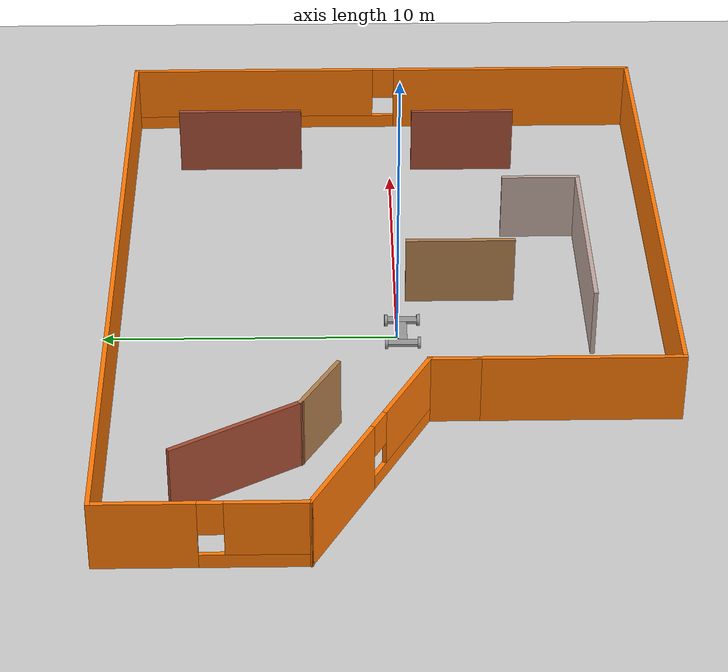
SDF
<sdf version="1.6">
 <world name="default">
  <plugin name="hello" filename="libhello.so"/>
  <light name="sun" type="directional">
   <pose>0 0 10 0 -0 0</pose>
   <diffuse>0.8 0.8 0.8 1</diffuse>
   <specular>0.2 0.2 0.2 1</specular>
   <attenuation>
    <range>1000</range>
    <constant>0.9</constant>
    <linear>0.01</linear>
    <quadratic>0.001</quadratic>
   </attenuation>
   <direction>-0.5 0.1 -0.9</direction>
  </light>
  <model name="ground_plane">
   <static>1</static>
   <link name="link">
    <collision name="collision">
     <geometry><plane><normal>0 0 1</normal><size>100 100</size></plane></geometry>
     <surface>
      <contact><collide_bitmask>65535</collide_bitmask></contact>
      <friction><ode><mu>100</mu><mu2>50</mu2></ode></friction>
     </surface>
    </collision>
    <visual name="visual">
     <cast_shadows>0</cast_shadows>
     <geometry><plane><normal>0 0 1</normal><size>100 100</size></plane></geometry>
     <material>
      <script><uri>file://media/materials/scripts/gazebo.material</uri><name>Gazebo/Grey</name></script>
     </material>
    </visual>
   </link>
  </model>
  <gravity>0 0 -9.8</gravity>
  <magnetic_field>6e-06 2.3e-05 -4.2e-05</magnetic_field>
  <atmosphere type="adiabatic"/>
  <physics name="default_physics" default="0" type="ode">
   <max_step_size>0.001</max_step_size>
   <real_time_factor>1</real_time_factor>
   <real_time_update_rate>1000</real_time_update_rate>
  </physics>
  <scene><ambient>0.4 0.4 0.4 1</ambient><background>0.7 0.7 0.7 1</background><shadows>1</shadows></scene>
  <audio><device>default</device></audio>
  <spherical_coordinates>
   <surface_model>EARTH_WGS84</surface_model>
   <latitude_deg>0</latitude_deg>
   <longitude_deg>0</longitude_deg>
   <elevation>0</elevation>
   <heading_deg>0</heading_deg>
  </spherical_coordinates>
  <model name="building_room_No1">
   <pose>1.13605 0.221425 0 0 -0 0</pose>
   <link name="Wall_0">
    <collision name="Wall_0_Collision">
     <geometry><box><size>1.75 0.15 2.5</size></box></geometry>
     <pose>0 0 1.25 0 -0 0</pose>
    </collision>
    <visual name="Wall_0_Visual">
     <pose>0 0 1.25 0 -0 0</pose>
     <geometry><box><size>1.75 0.15 2.5</size></box></geometry>
     <material>
      <script><uri>file://media/materials/scripts/gazebo.material</uri><name>Gazebo/Grey</name></script>
      <ambient>0.996078 0.47451 0.0196078 1</ambient>
     </material>
     <meta><layer>0</layer></meta>
    </visual>
    <pose>-5.66165 -1.9 0 0 -0 -1.5708</pose>
   </link>
   <link name="Wall_1">
    <collision name="Wall_1_Collision">
     <geometry><box><size>6.75 0.15 2.5</size></box></geometry>
     <pose>0 0 1.25 0 -0 0</pose>
    </collision>
    <visual name="Wall_1_Visual">
     <pose>0 0 1.25 0 -0 0</pose>
     <geometry><box><size>6.75 0.15 2.5</size></box></geometry>
     <material>
      <script><uri>file://media/materials/scripts/gazebo.material</uri><name>Gazebo/Grey</name></script>
      <ambient>0.996078 0.47451 0.0196078 1</ambient>
     </material>
     <meta><layer>0</layer></meta>
    </visual>
    <pose>-5.66165 -6 0 0 -0 -1.5708</pose>
   </link>
   <link name="Wall_11">
    <collision name="Wall_11_Collision">
     <geometry><box><size>7.25 0.15 2.5</size></box></geometry>
     <pose>0 0 1.25 0 -0 0</pose>
    </collision>
    <visual name="Wall_11_Visual">
     <pose>0 0 1.25 0 -0 0</pose>
     <geometry><box><size>7.25 0.15 2.5</size></box></geometry>
     <material>
      <script><uri>file://media/materials/scripts/gazebo.material</uri><name>Gazebo/Grey</name></script>
      <ambient>0.760784 0.662745 0.627451 1</ambient>
     </material>
     <meta><layer>0</layer></meta>
    </visual>
    <pose>1.48564 -6.76482 0 0 -0 0</pose>
   </link>
   <link name="Wall_12">
    <collision name="Wall_12_Collision">
     <geometry><box><size>2.75 0.15 2.5</size></box></geometry>
     <pose>0 0 1.25 0 -0 0</pose>
    </collision>
    <visual name="Wall_12_Visual">
     <pose>0 0 1.25 0 -0 0</pose>
     <geometry><box><size>2.75 0.15 2.5</size></box></geometry>
     <material>
      <script><uri>file://media/materials/scripts/gazebo.material</uri><name>Gazebo/Grey</name></script>
      <ambient>0.760784 0.662745 0.627451 1</ambient>
     </material>
     <meta><layer>0</layer></meta>
    </visual>
    <pose>5.03564 -5.46482 0 0 -0 1.5708</pose>
   </link>
   <link name="Wall_14">
    <collision name="Wall_14_Collision">
     <geometry><box><size>3.75 0.15 2.5</size></box></geometry>
     <pose>0 0 1.25 0 -0 0</pose>
    </collision>
    <visual name="Wall_14_Visual">
     <pose>0 0 1.25 0 -0 0</pose>
     <geometry><box><size>3.75 0.15 2.5</size></box></geometry>
     <material>
      <script><uri>file://media/materials/scripts/gazebo.material</uri><name>Gazebo/Wood</name></script>
      <ambient>1 1 1 1</ambient>
     </material>
     <meta><layer>0</layer></meta>
    </visual>
    <pose>1.06655 -2.43195 0 0 -0 1.5708</pose>
   </link>
   <link name="Wall_16">
    <collision name="Wall_16_Collision">
     <geometry><box><size>4.5 0.15 2.5</size></box></geometry>
     <pose>0 0 1.25 0 -0 0</pose>
    </collision>
    <visual name="Wall_16_Visual">
     <pose>0 0 1.25 0 -0 0</pose>
     <geometry><box><size>4.5 0.15 2.5</size></box></geometry>
     <material>
      <script><uri>file://media/materials/scripts/gazebo.material</uri><name>Gazebo/Bricks</name></script>
      <ambient>1 1 1 1</ambient>
     </material>
     <meta><layer>0</layer></meta>
    </visual>
    <pose>9.68534 5.30758 0 0 -0 -1.5708</pose>
   </link>
   <link name="Wall_18">
    <collision name="Wall_18_Collision">
     <geometry><box><size>3.75 0.15 2.5</size></box></geometry>
     <pose>0 0 1.25 0 -0 0</pose>
    </collision>
    <visual name="Wall_18_Visual">
     <pose>0 0 1.25 0 -0 0</pose>
     <geometry><box><size>3.75 0.15 2.5</size></box></geometry>
     <material>
      <script><uri>file://media/materials/scripts/gazebo.material</uri><name>Gazebo/Bricks</name></script>
      <ambient>1 1 1 1</ambient>
     </material>
     <meta><layer>0</layer></meta>
    </visual>
    <pose>9.57981 -2.90104 0 0 -0 -1.5708</pose>
   </link>
   <link name="Wall_2">
    <collision name="Wall_2_Collision">
     <geometry><box><size>18.5 0.15 2.5</size></box></geometry>
     <pose>0 0 1.25 0 -0 0</pose>
    </collision>
    <visual name="Wall_2_Visual">
     <pose>0 0 1.25 0 -0 0</pose>
     <geometry><box><size>18.5 0.15 2.5</size></box></geometry>
     <material>
      <script><uri>file://media/materials/scripts/gazebo.material</uri><name>Gazebo/Grey</name></script>
      <ambient>0.996078 0.47451 0.0196078 1</ambient>
     </material>
     <meta><layer>0</layer></meta>
    </visual>
    <pose>3.51335 -9.3 0 0 -0 0</pose>
   </link>
   <link name="Wall_3">
    <pose>12.6883 -0 0 0 -0 1.5708</pose>
    <visual name="Wall_3_Visual_0">
     <pose>-4.91034 0 1.25 0 -0 0</pose>
     <geometry><box><size>8.92932 0.15 2.5</size></box></geometry>
     <material>
      <script><uri>file://media/materials/scripts/gazebo.material</uri><name>Gazebo/Grey</name></script>
      <ambient>0.996078 0.47451 0.0196078 1</ambient>
     </material>
     <meta><layer>0</layer></meta>
    </visual>
    <collision name="Wall_3_Collision_0">
     <geometry><box><size>8.92932 0.15 2.5</size></box></geometry>
     <pose>-4.91034 0 1.25 0 -0 0</pose>
    </collision>
    <visual name="Wall_3_Visual_1">
     <pose>4.46466 0 0.25 0 -0 0</pose>
     <geometry><box><size>9.82068 0.15 0.5</size></box></geometry>
     <material>
      <script><uri>file://media/materials/scripts/gazebo.material</uri><name>Gazebo/Grey</name></script>
      <ambient>0.996078 0.47451 0.0196078 1</ambient>
     </material>
     <meta><layer>0</layer></meta>
    </visual>
    <collision name="Wall_3_Collision_1">
     <geometry><box><size>9.82068 0.15 0.5</size></box></geometry>
     <pose>4.46466 0 0.25 0 -0 0</pose>
    </collision>
    <visual name="Wall_3_Visual_2">
     <pose>4.86466 0 1.5 0 -0 0</pose>
     <geometry><box><size>9.02068 0.15 2</size></box></geometry>
     <material>
      <script><uri>file://media/materials/scripts/gazebo.material</uri><name>Gazebo/Grey</name></script>
      <ambient>0.996078 0.47451 0.0196078 1</ambient>
     </material>
     <meta><layer>0</layer></meta>
    </visual>
    <collision name="Wall_3_Collision_2">
     <geometry><box><size>9.02068 0.15 2</size></box></geometry>
     <pose>4.86466 0 1.5 0 -0 0</pose>
    </collision>
    <visual name="Wall_3_Visual_3">
     <pose>-0.04568 0 1.9 0 -0 0</pose>
     <geometry><box><size>0.8 0.15 1.2</size></box></geometry>
     <material>
      <script><uri>file://media/materials/scripts/gazebo.material</uri><name>Gazebo/Grey</name></script>
      <ambient>0.996078 0.47451 0.0196078 1</ambient>
     </material>
     <meta><layer>0</layer></meta>
    </visual>
    <collision name="Wall_3_Collision_3">
     <geometry><box><size>0.8 0.15 1.2</size></box></geometry>
     <pose>-0.04568 0 1.9 0 -0 0</pose>
    </collision>
   </link>
   <link name="Wall_4">
    <collision name="Wall_4_Collision">
     <geometry><box><size>25.5 0.15 2.5</size></box></geometry>
     <pose>0 0 1.25 0 -0 0</pose>
    </collision>
    <visual name="Wall_4_Visual">
     <pose>0 0 1.25 0 -0 0</pose>
     <geometry><box><size>25.5 0.15 2.5</size></box></geometry>
     <material>
      <script><uri>file://media/materials/scripts/gazebo.material</uri><name>Gazebo/Grey</name></script>
      <ambient>0.996078 0.47451 0.0196078 1</ambient>
     </material>
     <meta><layer>0</layer></meta>
    </visual>
    <pose>0.013348 9.3 0 0 -0 3.14159</pose>
   </link>
   <link name="Wall_5">
    <pose>-12.6617 6 0 0 -0 -1.5708</pose>
    <visual name="Wall_5_Visual_0">
     <pose>-1.72833 0 1.25 0 -0 0</pose>
     <geometry><box><size>3.29334 0.15 2.5</size></box></geometry>
     <material>
      <script><uri>file://media/materials/scripts/gazebo.material</uri><name>Gazebo/Grey</name></script>
      <ambient>0.996078 0.47451 0.0196078 1</ambient>
     </material>
     <meta><layer>0</layer></meta>
    </visual>
    <collision name="Wall_5_Collision_0">
     <geometry><box><size>3.29334 0.15 2.5</size></box></geometry>
     <pose>-1.72833 0 1.25 0 -0 0</pose>
    </collision>
    <visual name="Wall_5_Visual_1">
     <pose>1.64667 0 0.25 0 -0 0</pose>
     <geometry><box><size>3.45666 0.15 0.5</size></box></geometry>
     <material>
      <script><uri>file://media/materials/scripts/gazebo.material</uri><name>Gazebo/Grey</name></script>
      <ambient>0.996078 0.47451 0.0196078 1</ambient>
     </material>
     <meta><layer>0</layer></meta>
    </visual>
    <collision name="Wall_5_Collision_1">
     <geometry><box><size>3.45666 0.15 0.5</size></box></geometry>
     <pose>1.64667 0 0.25 0 -0 0</pose>
    </collision>
    <visual name="Wall_5_Visual_2">
     <pose>2.04667 0 1.5 0 -0 0</pose>
     <geometry><box><size>2.65666 0.15 2</size></box></geometry>
     <material>
      <script><uri>file://media/materials/scripts/gazebo.material</uri><name>Gazebo/Grey</name></script>
      <ambient>0.996078 0.47451 0.0196078 1</ambient>
     </material>
     <meta><layer>0</layer></meta>
    </visual>
    <collision name="Wall_5_Collision_2">
     <geometry><box><size>2.65666 0.15 2</size></box></geometry>
     <pose>2.04667 0 1.5 0 -0 0</pose>
    </collision>
    <visual name="Wall_5_Visual_3">
     <pose>0.318339 0 1.9 0 -0 0</pose>
     <geometry><box><size>0.8 0.15 1.2</size></box></geometry>
     <material>
      <script><uri>file://media/materials/scripts/gazebo.material</uri><name>Gazebo/Grey</name></script>
      <ambient>0.996078 0.47451 0.0196078 1</ambient>
     </material>
     <meta><layer>0</layer></meta>
    </visual>
    <collision name="Wall_5_Collision_3">
     <geometry><box><size>0.8 0.15 1.2</size></box></geometry>
     <pose>0.318339 0 1.9 0 -0 0</pose>
    </collision>
   </link>
   <link name="Wall_6">
    <pose>-9.16165 0.8 0 0 -0 -0.497343</pose>
    <visual name="Wall_6_Visual_0">
     <pose>-2.01269 0 1.25 0 -0 0</pose>
     <geometry><box><size>4.08955 0.15 2.5</size></box></geometry>
     <material>
      <script><uri>file://media/materials/scripts/gazebo.material</uri><name>Gazebo/Grey</name></script>
      <ambient>0.996078 0.47451 0.0196078 1</ambient>
     </material>
     <meta><layer>0</layer></meta>
    </visual>
    <collision name="Wall_6_Collision_0">
     <geometry><box><size>4.08955 0.15 2.5</size></box></geometry>
     <pose>-2.01269 0 1.25 0 -0 0</pose>
    </collision>
    <visual name="Wall_6_Visual_1">
     <pose>2.04478 0 0.25 0 -0 0</pose>
     <geometry><box><size>4.02537 0.15 0.5</size></box></geometry>
     <material>
      <script><uri>file://media/materials/scripts/gazebo.material</uri><name>Gazebo/Grey</name></script>
      <ambient>0.996078 0.47451 0.0196078 1</ambient>
     </material>
     <meta><layer>0</layer></meta>
    </visual>
    <collision name="Wall_6_Collision_1">
     <geometry><box><size>4.02537 0.15 0.5</size></box></geometry>
     <pose>2.04478 0 0.25 0 -0 0</pose>
    </collision>
    <visual name="Wall_6_Visual_2">
     <pose>2.44477 0 1.5 0 -0 0</pose>
     <geometry><box><size>3.22537 0.15 2</size></box></geometry>
     <material>
      <script><uri>file://media/materials/scripts/gazebo.material</uri><name>Gazebo/Grey</name></script>
      <ambient>0.996078 0.47451 0.0196078 1</ambient>
     </material>
     <meta><layer>0</layer></meta>
    </visual>
    <collision name="Wall_6_Collision_2">
     <geometry><box><size>3.22537 0.15 2</size></box></geometry>
     <pose>2.44477 0 1.5 0 -0 0</pose>
    </collision>
    <visual name="Wall_6_Visual_3">
     <pose>0.432088 0 1.9 0 -0 0</pose>
     <geometry><box><size>0.8 0.15 1.2</size></box></geometry>
     <material>
      <script><uri>file://media/materials/scripts/gazebo.material</uri><name>Gazebo/Grey</name></script>
      <ambient>0.996078 0.47451 0.0196078 1</ambient>
     </material>
     <meta><layer>0</layer></meta>
    </visual>
    <collision name="Wall_6_Collision_3">
     <geometry><box><size>0.8 0.15 1.2</size></box></geometry>
     <pose>0.432088 0 1.9 0 -0 0</pose>
    </collision>
   </link>
   <link name="Wall_8">
    <collision name="Wall_8_Collision">
     <geometry><box><size>4.75 0.15 2.5</size></box></geometry>
     <pose>0 0 1.25 0 -0 0</pose>
    </collision>
    <visual name="Wall_8_Visual">
     <pose>0 0 1.25 0 -0 0</pose>
     <geometry><box><size>4.75 0.15 2.5</size></box></geometry>
     <material>
      <script><uri>file://media/materials/scripts/gazebo.material</uri><name>Gazebo/Bricks</name></script>
      <ambient>1 1 1 1</ambient>
     </material>
     <meta><layer>0</layer></meta>
    </visual>
    <pose>-9.00548 4.99821 0 0 -0 -1.0472</pose>
   </link>
   <link name="Wall_9">
    <collision name="Wall_9_Collision">
     <geometry><box><size>2.5 0.15 2.5</size></box></geometry>
     <pose>0 0 1.25 0 -0 0</pose>
    </collision>
    <visual name="Wall_9_Visual">
     <pose>0 0 1.25 0 -0 0</pose>
     <geometry><box><size>2.5 0.15 2.5</size></box></geometry>
     <material>
      <script><uri>file://media/materials/scripts/gazebo.material</uri><name>Gazebo/Wood</name></script>
      <ambient>1 1 1 1</ambient>
     </material>
     <meta><layer>0</layer></meta>
    </visual>
    <pose>-6.8379 2.41886 0 0 -0 -0.523599</pose>
   </link>
   <static>1</static>
  </model>
  <model name="robot">
   <link name="link_0">
    <inertial>
     <mass>1</mass>
     <inertia>
      <ixx>0.166667</ixx>
      <ixy>0</ixy>
      <ixz>0</ixz>
      <iyy>0.166667</iyy>
      <iyz>0</iyz>
      <izz>0.166667</izz>
     </inertia>
    </inertial>
    <visual name="visual">
     <geometry><box><size>0.3 1 0.1</size></box></geometry>
     <material>
      <lighting>1</lighting>
      <script><uri>file://media/materials/scripts/gazebo.material</uri><name>Gazebo/Grey</name></script>
      <shader type="vertex"><normal_map>__default__</normal_map></shader>
      <ambient>0.3 0.3 0.3 1</ambient>
      <diffuse>0.7 0.7 0.7 1</diffuse>
      <specular>0.01 0.01 0.01 1</specular>
      <emissive>0 0 0 1</emissive>
     </material>
    </visual>
    <collision name="collision">
     <geometry><box><size>0.3 1 0.1</size></box></geometry>
     <surface>
      <friction>
       <ode><mu>1</mu><mu2>1</mu2><fdir1>0 0 0</fdir1><slip1>0</slip1><slip2>0</slip2></ode>
       <torsional>
        <coefficient>1</coefficient>
        <patch_radius>0</patch_radius>
        <surface_radius>0</surface_radius>
        <use_patch_radius>1</use_patch_radius>
        <ode><slip>0</slip></ode>
       </torsional>
      </friction>
      <bounce><restitution_coefficient>0</restitution_coefficient><threshold>1e+06</threshold></bounce>
      <contact>
       <collide_without_contact>0</collide_without_contact>
       <collide_without_contact_bitmask>1</collide_without_contact_bitmask>
       <collide_bitmask>1</collide_bitmask>
       <ode>
        <soft_cfm>0</soft_cfm>
        <soft_erp>0.2</soft_erp>
        <kp>1e+13</kp>
        <kd>1</kd>
        <max_vel>0.01</max_vel>
        <min_depth>0</min_depth>
       </ode>
       <bullet>
        <split_impulse>1</split_impulse>
        <split_impulse_penetration_threshold>-0.01</split_impulse_penetration_threshold>
        <soft_cfm>0</soft_cfm>
        <soft_erp>0.2</soft_erp>
        <kp>1e+13</kp>
        <kd>1</kd>
       </bullet>
      </contact>
     </surface>
    </collision>
   </link>
   <link name="link_0_0">
    <inertial>
     <mass>1</mass>
     <inertia>
      <ixx>0.166667</ixx>
      <ixy>0</ixy>
      <ixz>0</ixz>
      <iyy>0.166667</iyy>
      <iyz>0</iyz>
      <izz>0.166667</izz>
     </inertia>
    </inertial>
    <pose>0.65 0 0 0 -0 0</pose>
    <visual name="visual">
     <geometry><box><size>1 0.3 0.1</size></box></geometry>
     <material>
      <lighting>1</lighting>
      <script><uri>file://media/materials/scripts/gazebo.material</uri><name>Gazebo/Grey</name></script>
      <shader type="vertex"><normal_map>__default__</normal_map></shader>
      <ambient>0.3 0.3 0.3 1</ambient>
      <diffuse>0.7 0.7 0.7 1</diffuse>
      <specular>0.01 0.01 0.01 1</specular>
      <emissive>0 0 0 1</emissive>
     </material>
    </visual>
    <collision name="collision">
     <geometry><box><size>1 0.3 0.1</size></box></geometry>
     <surface>
      <friction>
       <ode><mu>1</mu><mu2>1</mu2><fdir1>0 0 0</fdir1><slip1>0</slip1><slip2>0</slip2></ode>
       <torsional>
        <coefficient>1</coefficient>
        <patch_radius>0</patch_radius>
        <surface_radius>0</surface_radius>
        <use_patch_radius>1</use_patch_radius>
        <ode><slip>0</slip></ode>
       </torsional>
      </friction>
      <bounce><restitution_coefficient>0</restitution_coefficient><threshold>1e+06</threshold></bounce>
      <contact>
       <collide_without_contact>0</collide_without_contact>
       <collide_without_contact_bitmask>1</collide_without_contact_bitmask>
       <collide_bitmask>1</collide_bitmask>
       <ode>
        <soft_cfm>0</soft_cfm>
        <soft_erp>0.2</soft_erp>
        <kp>1e+13</kp>
        <kd>1</kd>
        <max_vel>0.01</max_vel>
        <min_depth>0</min_depth>
       </ode>
       <bullet>
        <split_impulse>1</split_impulse>
        <split_impulse_penetration_threshold>-0.01</split_impulse_penetration_threshold>
        <soft_cfm>0</soft_cfm>
        <soft_erp>0.2</soft_erp>
        <kp>1e+13</kp>
        <kd>1</kd>
       </bullet>
      </contact>
     </surface>
    </collision>
   </link>
   <link name="link_0_clone">
    <inertial>
     <mass>1</mass>
     <inertia>
      <ixx>0.166667</ixx>
      <ixy>0</ixy>
      <ixz>0</ixz>
      <iyy>0.166667</iyy>
      <iyz>0</iyz>
      <izz>0.166667</izz>
     </inertia>
    </inertial>
    <pose>1.3 0 0 0 -0 0</pose>
    <visual name="visual">
     <geometry><box><size>0.3 1 0.1</size></box></geometry>
     <material>
      <lighting>1</lighting>
      <script><uri>file://media/materials/scripts/gazebo.material</uri><name>Gazebo/Grey</name></script>
      <shader type="vertex"><normal_map>__default__</normal_map></shader>
      <ambient>0.3 0.3 0.3 1</ambient>
      <diffuse>0.7 0.7 0.7 1</diffuse>
      <specular>0.01 0.01 0.01 1</specular>
      <emissive>0 0 0 1</emissive>
     </material>
    </visual>
    <collision name="collision">
     <geometry><box><size>0.3 1 0.1</size></box></geometry>
     <surface>
      <friction>
       <ode><mu>1</mu><mu2>1</mu2><fdir1>0 0 0</fdir1><slip1>0</slip1><slip2>0</slip2></ode>
       <torsional>
        <coefficient>1</coefficient>
        <patch_radius>0</patch_radius>
        <surface_radius>0</surface_radius>
        <use_patch_radius>1</use_patch_radius>
        <ode><slip>0</slip></ode>
       </torsional>
      </friction>
      <bounce><restitution_coefficient>0</restitution_coefficient><threshold>1e+06</threshold></bounce>
      <contact>
       <collide_without_contact>0</collide_without_contact>
       <collide_without_contact_bitmask>1</collide_without_contact_bitmask>
       <collide_bitmask>1</collide_bitmask>
       <ode>
        <soft_cfm>0</soft_cfm>
        <soft_erp>0.2</soft_erp>
        <kp>1e+13</kp>
        <kd>1</kd>
        <max_vel>0.01</max_vel>
        <min_depth>0</min_depth>
       </ode>
       <bullet>
        <split_impulse>1</split_impulse>
        <split_impulse_penetration_threshold>-0.01</split_impulse_penetration_threshold>
        <soft_cfm>0</soft_cfm>
        <soft_erp>0.2</soft_erp>
        <kp>1e+13</kp>
        <kd>1</kd>
       </bullet>
      </contact>
     </surface>
    </collision>
   </link>
   <link name="link_1">
    <inertial>
     <mass>1</mass>
     <inertia><ixx>0.145833</ixx><ixy>0</ixy><ixz>0</ixz><iyy>0.145833</iyy><iyz>0</iyz><izz>0.125</izz></inertia>
    </inertial>
    <pose>0 -0.550019 0 1.5707 -0 0</pose>
    <visual name="visual">
     <geometry><cylinder><radius>0.2</radius><length>0.1</length></cylinder></geometry>
     <material>
      <lighting>1</lighting>
      <script><uri>file://media/materials/scripts/gazebo.material</uri><name>Gazebo/Grey</name></script>
      <shader type="vertex"><normal_map>__default__</normal_map></shader>
      <ambient>0.3 0.3 0.3 1</ambient>
      <diffuse>0.7 0.7 0.7 1</diffuse>
      <specular>0.01 0.01 0.01 1</specular>
      <emissive>0 0 0 1</emissive>
     </material>
    </visual>
    <collision name="collision">
     <geometry><cylinder><radius>0.2</radius><length>0.1</length></cylinder></geometry>
     <surface>
      <friction>
       <ode><mu>1</mu><mu2>1</mu2><fdir1>0 0 0</fdir1><slip1>0</slip1><slip2>0</slip2></ode>
       <torsional>
        <coefficient>1</coefficient>
        <patch_radius>0</patch_radius>
        <surface_radius>0</surface_radius>
        <use_patch_radius>1</use_patch_radius>
        <ode><slip>0</slip></ode>
       </torsional>
      </friction>
      <bounce><restitution_coefficient>0</restitution_coefficient><threshold>1e+06</threshold></bounce>
      <contact>
       <collide_without_contact>0</collide_without_contact>
       <collide_without_contact_bitmask>1</collide_without_contact_bitmask>
       <collide_bitmask>1</collide_bitmask>
       <ode>
        <soft_cfm>0</soft_cfm>
        <soft_erp>0.2</soft_erp>
        <kp>1e+13</kp>
        <kd>1</kd>
        <max_vel>0.01</max_vel>
        <min_depth>0</min_depth>
       </ode>
       <bullet>
        <split_impulse>1</split_impulse>
        <split_impulse_penetration_threshold>-0.01</split_impulse_penetration_threshold>
        <soft_cfm>0</soft_cfm>
        <soft_erp>0.2</soft_erp>
        <kp>1e+13</kp>
        <kd>1</kd>
       </bullet>
      </contact>
     </surface>
    </collision>
   </link>
   <link name="link_1_clone">
    <inertial>
     <mass>1</mass>
     <inertia><ixx>0.145833</ixx><ixy>0</ixy><ixz>0</ixz><iyy>0.145833</iyy><iyz>0</iyz><izz>0.125</izz></inertia>
    </inertial>
    <pose>0 0.550019 0 1.5707 -0 0</pose>
    <visual name="visual">
     <geometry><cylinder><radius>0.2</radius><length>0.1</length></cylinder></geometry>
     <material>
      <lighting>1</lighting>
      <script><uri>file://media/materials/scripts/gazebo.material</uri><name>Gazebo/Grey</name></script>
      <shader type="vertex"><normal_map>__default__</normal_map></shader>
      <ambient>0.3 0.3 0.3 1</ambient>
      <diffuse>0.7 0.7 0.7 1</diffuse>
      <specular>0.01 0.01 0.01 1</specular>
      <emissive>0 0 0 1</emissive>
     </material>
    </visual>
    <collision name="collision">
     <geometry><cylinder><radius>0.2</radius><length>0.1</length></cylinder></geometry>
     <surface>
      <friction>
       <ode><mu>1</mu><mu2>1</mu2><fdir1>0 0 0</fdir1><slip1>0</slip1><slip2>0</slip2></ode>
       <torsional>
        <coefficient>1</coefficient>
        <patch_radius>0</patch_radius>
        <surface_radius>0</surface_radius>
        <use_patch_radius>1</use_patch_radius>
        <ode><slip>0</slip></ode>
       </torsional>
      </friction>
      <bounce><restitution_coefficient>0</restitution_coefficient><threshold>1e+06</threshold></bounce>
      <contact>
       <collide_without_contact>0</collide_without_contact>
       <collide_without_contact_bitmask>1</collide_without_contact_bitmask>
       <collide_bitmask>1</collide_bitmask>
       <ode>
        <soft_cfm>0</soft_cfm>
        <soft_erp>0.2</soft_erp>
        <kp>1e+13</kp>
        <kd>1</kd>
        <max_vel>0.01</max_vel>
        <min_depth>0</min_depth>
       </ode>
       <bullet>
        <split_impulse>1</split_impulse>
        <split_impulse_penetration_threshold>-0.01</split_impulse_penetration_threshold>
        <soft_cfm>0</soft_cfm>
        <soft_erp>0.2</soft_erp>
        <kp>1e+13</kp>
        <kd>1</kd>
       </bullet>
      </contact>
     </surface>
    </collision>
   </link>
   <link name="link_1_clone_clone">
    <inertial>
     <mass>1</mass>
     <inertia><ixx>0.145833</ixx><ixy>0</ixy><ixz>0</ixz><iyy>0.145833</iyy><iyz>0</iyz><izz>0.125</izz></inertia>
    </inertial>
    <pose>1.3 0.550019 0 1.5707 -0 0</pose>
    <visual name="visual">
     <geometry><cylinder><radius>0.2</radius><length>0.1</length></cylinder></geometry>
     <material>
      <lighting>1</lighting>
      <script><uri>file://media/materials/scripts/gazebo.material</uri><name>Gazebo/Grey</name></script>
      <shader type="vertex"><normal_map>__default__</normal_map></shader>
      <ambient>0.3 0.3 0.3 1</ambient>
      <diffuse>0.7 0.7 0.7 1</diffuse>
      <specular>0.01 0.01 0.01 1</specular>
      <emissive>0 0 0 1</emissive>
     </material>
    </visual>
    <collision name="collision">
     <geometry><cylinder><radius>0.2</radius><length>0.1</length></cylinder></geometry>
     <surface>
      <friction>
       <ode><mu>1</mu><mu2>1</mu2><fdir1>0 0 0</fdir1><slip1>0</slip1><slip2>0</slip2></ode>
       <torsional>
        <coefficient>1</coefficient>
        <patch_radius>0</patch_radius>
        <surface_radius>0</surface_radius>
        <use_patch_radius>1</use_patch_radius>
        <ode><slip>0</slip></ode>
       </torsional>
      </friction>
      <bounce><restitution_coefficient>0</restitution_coefficient><threshold>1e+06</threshold></bounce>
      <contact>
       <collide_without_contact>0</collide_without_contact>
       <collide_without_contact_bitmask>1</collide_without_contact_bitmask>
       <collide_bitmask>1</collide_bitmask>
       <ode>
        <soft_cfm>0</soft_cfm>
        <soft_erp>0.2</soft_erp>
        <kp>1e+13</kp>
        <kd>1</kd>
        <max_vel>0.01</max_vel>
        <min_depth>0</min_depth>
       </ode>
       <bullet>
        <split_impulse>1</split_impulse>
        <split_impulse_penetration_threshold>-0.01</split_impulse_penetration_threshold>
        <soft_cfm>0</soft_cfm>
        <soft_erp>0.2</soft_erp>
        <kp>1e+13</kp>
        <kd>1</kd>
       </bullet>
      </contact>
     </surface>
    </collision>
   </link>
   <link name="link_1_clone_clone_0">
    <inertial>
     <mass>1</mass>
     <inertia><ixx>0.145833</ixx><ixy>0</ixy><ixz>0</ixz><iyy>0.145833</iyy><iyz>0</iyz><izz>0.125</izz></inertia>
    </inertial>
    <pose>1.3 -0.550019 0 1.5707 -0 0</pose>
    <visual name="visual">
     <geometry><cylinder><radius>0.2</radius><length>0.1</length></cylinder></geometry>
     <material>
      <lighting>1</lighting>
      <script><uri>file://media/materials/scripts/gazebo.material</uri><name>Gazebo/Grey</name></script>
      <shader type="vertex"><normal_map>__default__</normal_map></shader>
      <ambient>0.3 0.3 0.3 1</ambient>
      <diffuse>0.7 0.7 0.7 1</diffuse>
      <specular>0.01 0.01 0.01 1</specular>
      <emissive>0 0 0 1</emissive>
     </material>
    </visual>
    <collision name="collision">
     <geometry><cylinder><radius>0.2</radius><length>0.1</length></cylinder></geometry>
     <surface>
      <friction>
       <ode><mu>1</mu><mu2>1</mu2><fdir1>0 0 0</fdir1><slip1>0</slip1><slip2>0</slip2></ode>
       <torsional>
        <coefficient>1</coefficient>
        <patch_radius>0</patch_radius>
        <surface_radius>0</surface_radius>
        <use_patch_radius>1</use_patch_radius>
        <ode><slip>0</slip></ode>
       </torsional>
      </friction>
      <bounce><restitution_coefficient>0</restitution_coefficient><threshold>1e+06</threshold></bounce>
      <contact>
       <collide_without_contact>0</collide_without_contact>
       <collide_without_contact_bitmask>1</collide_without_contact_bitmask>
       <collide_bitmask>1</collide_bitmask>
       <ode>
        <soft_cfm>0</soft_cfm>
        <soft_erp>0.2</soft_erp>
        <kp>1e+13</kp>
        <kd>1</kd>
        <max_vel>0.01</max_vel>
        <min_depth>0</min_depth>
       </ode>
       <bullet>
        <split_impulse>1</split_impulse>
        <split_impulse_penetration_threshold>-0.01</split_impulse_penetration_threshold>
        <soft_cfm>0</soft_cfm>
        <soft_erp>0.2</soft_erp>
        <kp>1e+13</kp>
        <kd>1</kd>
       </bullet>
      </contact>
     </surface>
    </collision>
   </link>
   <joint name="link_0_0_JOINT_5" type="prismatic">
    <parent>link_0_0</parent>
    <child>link_0_clone</child>
    <axis>
     <xyz>1 0 0</xyz>
     <use_parent_model_frame>0</use_parent_model_frame>
     <limit>
      <lower>-1.79769e+308</lower>
      <upper>1.79769e+308</upper>
      <effort>-1</effort>
      <velocity>-1</velocity>
     </limit>
     <dynamics>
      <spring_reference>0</spring_reference>
      <spring_stiffness>0</spring_stiffness>
      <damping>0</damping>
      <friction>0</friction>
     </dynamics>
    </axis>
    <physics>
     <ode><limit><cfm>0</cfm><erp>0.2</erp></limit><suspension><cfm>0</cfm><erp>0.2</erp></suspension></ode>
    </physics>
   </joint>
   <joint name="link_0_0_JOINT_6" type="prismatic">
    <parent>link_0_0</parent>
    <child>link_0</child>
    <axis>
     <xyz>1 0 0</xyz>
     <use_parent_model_frame>0</use_parent_model_frame>
     <limit>
      <lower>-1.79769e+308</lower>
      <upper>1.79769e+308</upper>
      <effort>-1</effort>
      <velocity>-1</velocity>
     </limit>
     <dynamics>
      <spring_reference>0</spring_reference>
      <spring_stiffness>0</spring_stiffness>
      <damping>0</damping>
      <friction>0</friction>
     </dynamics>
    </axis>
    <physics>
     <ode><limit><cfm>0</cfm><erp>0.2</erp></limit><suspension><cfm>0</cfm><erp>0.2</erp></suspension></ode>
    </physics>
   </joint>
   <joint name="link_0_JOINT_3" type="revolute">
    <parent>link_0</parent>
    <child>link_1_clone</child>
    <axis>
     <xyz>0 0 1</xyz>
     <use_parent_model_frame>0</use_parent_model_frame>
     <limit>
      <lower>-1.79769e+308</lower>
      <upper>1.79769e+308</upper>
      <effort>-1</effort>
      <velocity>-1</velocity>
     </limit>
     <dynamics>
      <spring_reference>0</spring_reference>
      <spring_stiffness>0</spring_stiffness>
      <damping>0</damping>
      <friction>0</friction>
     </dynamics>
    </axis>
    <physics>
     <ode><limit><cfm>0</cfm><erp>0.2</erp></limit><suspension><cfm>0</cfm><erp>0.2</erp></suspension></ode>
    </physics>
   </joint>
   <joint name="link_0_JOINT_4" type="revolute">
    <parent>link_0</parent>
    <child>link_1</child>
    <axis>
     <xyz>0 0 1</xyz>
     <use_parent_model_frame>0</use_parent_model_frame>
     <limit>
      <lower>-1.79769e+308</lower>
      <upper>1.79769e+308</upper>
      <effort>-1</effort>
      <velocity>-1</velocity>
     </limit>
     <dynamics>
      <spring_reference>0</spring_reference>
      <spring_stiffness>0</spring_stiffness>
      <damping>0</damping>
      <friction>0</friction>
     </dynamics>
    </axis>
    <physics>
     <ode><limit><cfm>0</cfm><erp>0.2</erp></limit><suspension><cfm>0</cfm><erp>0.2</erp></suspension></ode>
    </physics>
   </joint>
   <joint name="link_0_clone_JOINT_0" type="revolute">
    <parent>link_0_clone</parent>
    <child>link_1_clone_clone</child>
    <axis>
     <xyz>0 1 0</xyz>
     <use_parent_model_frame>0</use_parent_model_frame>
     <limit>
      <lower>-1.79769e+308</lower>
      <upper>1.79769e+308</upper>
      <effort>-1</effort>
      <velocity>-1</velocity>
     </limit>
     <dynamics>
      <spring_reference>0</spring_reference>
      <spring_stiffness>0</spring_stiffness>
      <damping>0</damping>
      <friction>0</friction>
     </dynamics>
    </axis>
    <physics>
     <ode><limit><cfm>0</cfm><erp>0.2</erp></limit><suspension><cfm>0</cfm><erp>0.2</erp></suspension></ode>
    </physics>
   </joint>
   <joint name="link_0_clone_JOINT_1" type="revolute">
    <parent>link_0_clone</parent>
    <child>link_1_clone_clone_0</child>
    <axis>
     <xyz>0 1 0</xyz>
     <use_parent_model_frame>0</use_parent_model_frame>
     <limit>
      <lower>-1.79769e+308</lower>
      <upper>1.79769e+308</upper>
      <effort>-1</effort>
      <velocity>-1</velocity>
     </limit>
     <dynamics>
      <spring_reference>0</spring_reference>
      <spring_stiffness>0</spring_stiffness>
      <damping>0</damping>
      <friction>0</friction>
     </dynamics>
    </axis>
    <physics>
     <ode><limit><cfm>0</cfm><erp>0.2</erp></limit><suspension><cfm>0</cfm><erp>0.2</erp></suspension></ode>
    </physics>
   </joint>
   <static>0</static>
   <pose>-0.578233 -0.178691 0.200005 0 -0 0</pose>
  </model>
 </world>
</sdf>
